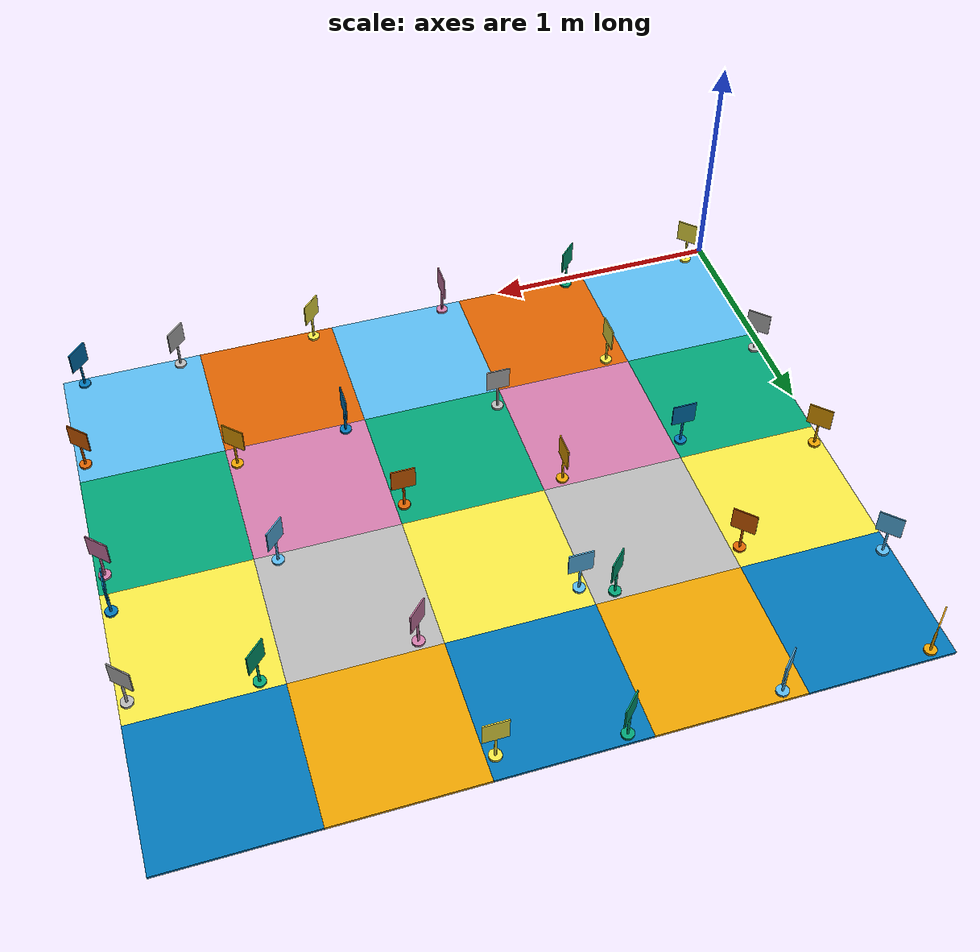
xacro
<?xml version="1.0" ?>
    <!--WARNING: This file was auto-generated by csv2xacro_node.py. It should not be edited by hand.-->
    <robot name="duckietown" xmlns:xacro="http://www.ros.org/wiki/xacro">
        <!--Parameters-->
        <xacro:property name="tile_width" value="0.595"/>
        <xacro:property name="pos_0" value="0.09 0.035"/>
        <xacro:property name="pos_1" value="0.035 0.09"/>
        <xacro:property name="pos_2" value="-0.035 0.09"/>
        <xacro:property name="pos_3" value="-0.09 0.035"/>
        <xacro:property name="pos_4" value="-0.09 -0.035"/>
        <xacro:property name="pos_5" value="-0.035 -0.09"/>
        <xacro:property name="pos_6" value="0.035 -0.09"/>
        <xacro:property name="pos_7" value="0.09 -0.035"/>
        <!--Include the tile and tag macros-->
        <xacro:include filename="$(find duckietown_description)/urdf/macros.urdf.xacro"/>
        <!--The world frame is at the lower left corner of duckietown-->
        <link name="world"/>
        <!--Describe the tiles-->
        <xacro:tile rotation="270" type="turn" x="0" y="0"/>
        <xacro:tile rotation="90" type="straight" x="0" y="1"/>
        <xacro:tile rotation="90" type="straight" x="0" y="2"/>
        <xacro:tile rotation="180" type="turn" x="0" y="3"/>
        <xacro:tile rotation="0" type="straight" x="1" y="0"/>
        <xacro:tile rotation="0" type="pond" x="1" y="1"/>
        <xacro:tile rotation="0" type="empty" x="1" y="2"/>
        <xacro:tile rotation="0" type="straight" x="1" y="3"/>
        <xacro:tile rotation="0" type="3way" x="2" y="0"/>
        <xacro:tile rotation="90" type="straight" x="2" y="1"/>
        <xacro:tile rotation="270" type="3way" x="2" y="2"/>
        <xacro:tile rotation="90" type="turn" x="2" y="3"/>
        <xacro:tile rotation="0" type="straight" x="3" y="0"/>
        <xacro:tile rotation="0" type="empty" x="3" y="1"/>
        <xacro:tile rotation="0" type="straight" x="3" y="2"/>
        <xacro:tile rotation="0" type="empty" x="3" y="3"/>
        <xacro:tile rotation="0" type="turn" x="4" y="0"/>
        <xacro:tile rotation="90" type="straight" x="4" y="1"/>
        <xacro:tile rotation="90" type="turn" x="4" y="2"/>
        <xacro:tile rotation="0" type="empty" x="4" y="3"/>
        <!--Empty border tiles-->
        <xacro:tile visible="false" x="0" y="4"/>
        <xacro:tile visible="false" x="1" y="4"/>
        <xacro:tile visible="false" x="2" y="4"/>
        <xacro:tile visible="false" x="3" y="4"/>
        <xacro:tile visible="false" x="4" y="4"/>
        <xacro:tile visible="false" x="5" y="4"/>
        <xacro:tile visible="false" x="5" y="0"/>
        <xacro:tile visible="false" x="5" y="1"/>
        <xacro:tile visible="false" x="5" y="2"/>
        <xacro:tile visible="false" x="5" y="3"/>
        <!--Describe the tags-->
        <xacro:tag id="26" pos="${pos_1}" rotation="45" x="0" y="1"/>
        <xacro:tag id="27" pos="${pos_1}" rotation="45" x="0" y="2"/>
        <xacro:tag id="28" pos="${pos_1}" rotation="45" x="0" y="3"/>
        <xacro:tag id="29" pos="${pos_0}" rotation="135" x="1" y="0"/>
        <xacro:tag id="30" pos="${pos_7}" rotation="0" x="1" y="1"/>
        <xacro:tag id="201" pos="${pos_5}" rotation="270" x="1" y="2"/>
        <xacro:tag id="202" pos="${pos_5}" rotation="225" x="1" y="3"/>
        <xacro:tag id="203" pos="${pos_0}" rotation="180" x="2" y="0"/>
        <xacro:tag id="204" pos="${pos_1}" rotation="90" x="2" y="1"/>
        <xacro:tag id="205" pos="${pos_4}" rotation="0" x="2" y="2"/>
        <xacro:tag id="206" pos="${pos_6}" rotation="90" x="2" y="3"/>
        <xacro:tag id="207" pos="${pos_4}" rotation="135" x="2" y="3"/>
        <xacro:tag id="208" pos="${pos_0}" rotation="135" x="3" y="0"/>
        <xacro:tag id="209" pos="${pos_0}" rotation="0" x="3" y="1"/>
        <xacro:tag id="210" pos="${pos_5}" rotation="270" x="3" y="2"/>
        <xacro:tag id="211" pos="${pos_7}" rotation="315" x="3" y="3"/>
        <xacro:tag id="212" pos="${pos_0}" rotation="135" x="4" y="0"/>
        <xacro:tag id="213" pos="${pos_2}" rotation="45" x="4" y="1"/>
        <xacro:tag id="214" pos="${pos_3	}" rotation="135" x="4" y="2"/>
        <xacro:tag id="215" pos="${pos_7}" rotation="315" x="4" y="3"/>
        <xacro:tag id="216" pos="${pos_0}" rotation="45" x="0" y="0"/>
        <xacro:tag id="217" pos="${pos_3}" rotation="135" x="5" y="0"/>
        <xacro:tag id="218" pos="${pos_5}" rotation="225" x="5" y="1"/>
        <xacro:tag id="219" pos="${pos_5}" rotation="225" x="5" y="2"/>
        <xacro:tag id="220" pos="${pos_5}" rotation="225" x="5" y="3"/>
        <xacro:tag id="221" pos="${pos_7}" rotation="315" x="0" y="4"/>
        <xacro:tag id="222" pos="${pos_7}" rotation="315" x="1" y="4"/>
        <xacro:tag id="223" pos="${pos_7}" rotation="315" x="2" y="4"/>
        <xacro:tag id="224" pos="${pos_5}" rotation="270" x="3" y="4"/>
        <xacro:tag id="225" pos="${pos_2}" rotation="180" x="5" y="2"/>
    </robot>

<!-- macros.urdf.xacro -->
<robot name="macros" xmlns:xacro="http://www.ros.org/wiki/xacro">
    <xacro:property name="pi" value="3.14159265359" />
    <xacro:property name="tile_thickness" value="0.01" />

    <!-- Defines a tile link and joint-->
    <xacro:macro name="tile" params="x y type:=empty rotation:=0 visible:=true">
        <link name="tile_${x}_${y}">
            <xacro:if value="${visible}" >
                <visual>
                    <origin xyz="${tile_width/2} ${tile_width/2} ${-tile_thickness/2}" rpy="0 0 ${rotation * pi/180}"/>
                    <geometry>
                        <mesh filename="package://duckietown_description/urdf/meshes/${type}.dae" />
                    </geometry>
                </visual>
            </xacro:if>
        </link>

        <joint name="world_to_tile_${x}_${y}" type="fixed">
            <parent link="world" />
            <child link="tile_${x}_${y}" />
            <origin xyz="${tile_width * x} ${tile_width * y} 0" />
        </joint>
    </xacro:macro>

    <!-- Defines an april tag link and joint-->
    <xacro:macro name="tag" params="id x y pos rotation">
        <link name="tag_${id}">
            <visual>
                <origin xyz="0 0 0" />
                <geometry>
                    <mesh filename="package://duckietown_description/urdf/meshes/tags/tag_1.dae" />
                </geometry>
            </visual>
        </link>

        <joint name="world_to_tag_${id}" type="fixed">
            <parent link="tile_${x}_${y}" />
            <child link="tag_${id}" />
            <origin xyz="${pos} 0" rpy="0 0 ${rotation * pi/180}"/>
        </joint>
    </xacro:macro>
</robot>
